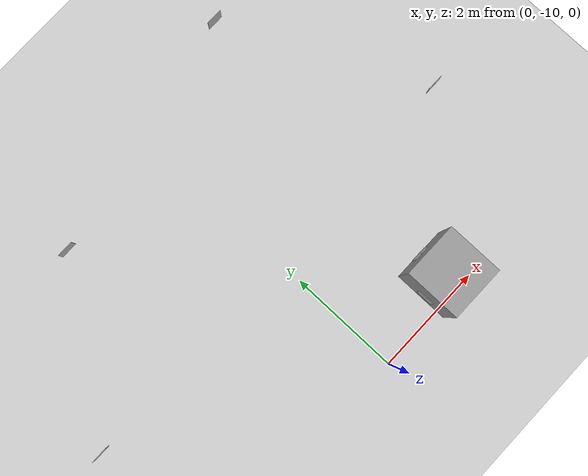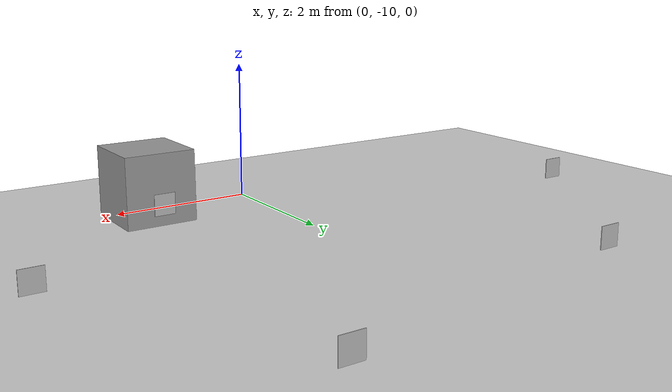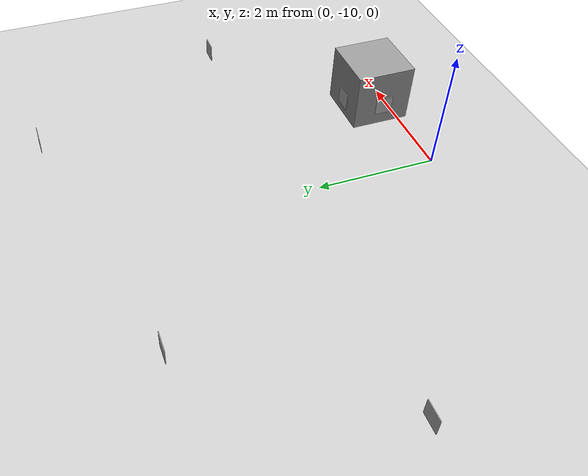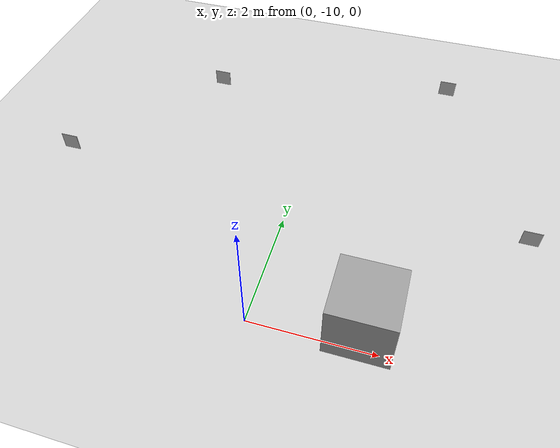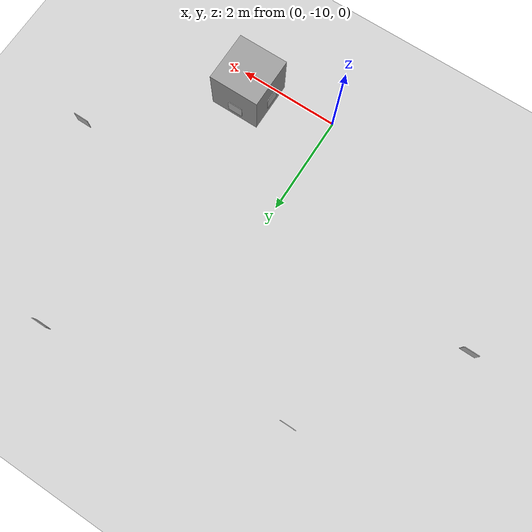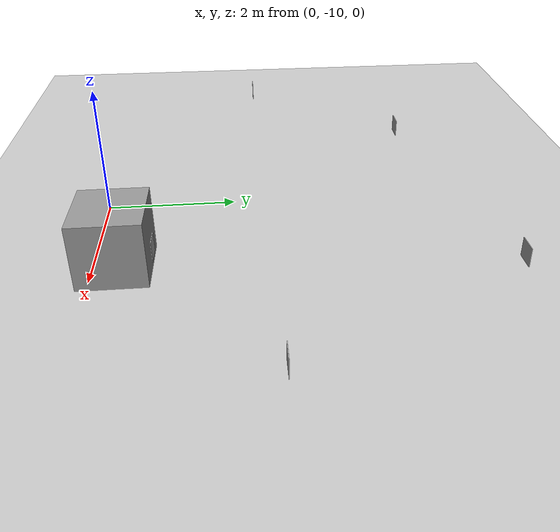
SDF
<sdf version="1.6">
 <world name="default">
  <model name="ground_plane">
   <static>1</static>
   <link name="link">
    <collision name="collision">
     <geometry><plane><normal>0 0 1</normal><size>100 100</size></plane></geometry>
     <surface>
      <contact><collide_bitmask>65535</collide_bitmask></contact>
      <friction><ode><mu>100</mu><mu2>50</mu2></ode></friction>
     </surface>
    </collision>
    <visual name="visual">
     <cast_shadows>0</cast_shadows>
     <geometry><plane><normal>0 0 1</normal><size>100 100</size></plane></geometry>
     <material>
      <script><uri>file://media/materials/scripts/gazebo.material</uri><name>Gazebo/Grey</name></script>
     </material>
    </visual>
   </link>
  </model>
  <model name="Apriltag36_11_00000">
   <link name="main">
    <visual name="main_Visual">
     <geometry><box><size>0.3 0.3 0.01</size></box></geometry>
     <material>
      <script>
       <uri>model://Apriltag36_11_00000/materials/scripts</uri>
       <uri>model://Apriltag36_11_00000/materials/textures</uri>
       <name>Apriltag36_11_00000</name>
      </script>
     </material>
    </visual>
   </link>
   <static>1</static>
   <pose>1.64909 -9.13497 0.299088 -1.5708 -6e-06 3.14159</pose>
  </model>
  <model name="Apriltag36_11_00001">
   <link name="main">
    <visual name="main_Visual">
     <geometry><box><size>0.3 0.3 0.01</size></box></geometry>
     <material>
      <script>
       <uri>model://Apriltag36_11_00001/materials/scripts</uri>
       <uri>model://Apriltag36_11_00001/materials/textures</uri>
       <name>Apriltag36_11_00001</name>
      </script>
     </material>
    </visual>
   </link>
   <static>1</static>
   <pose>1.17175 -9.66767 0.358115 3.14159 -1.57079 3.14159</pose>
  </model>
  <model name="Apriltag36_11_00002">
   <link name="main">
    <visual name="main_Visual">
     <geometry><box><size>0.3 0.3 0.01</size></box></geometry>
     <material>
      <script>
       <uri>model://Apriltag36_11_00002/materials/scripts</uri>
       <uri>model://Apriltag36_11_00002/materials/textures</uri>
       <name>Apriltag36_11_00002</name>
      </script>
     </material>
    </visual>
   </link>
   <static>1</static>
   <pose>-4.18474 -7.55956 0.333686 1.5708 -0 0</pose>
  </model>
  <model name="Apriltag36_11_00003">
   <link name="main">
    <visual name="main_Visual">
     <geometry><box><size>0.3 0.3 0.01</size></box></geometry>
     <material>
      <script>
       <uri>model://Apriltag36_11_00003/materials/scripts</uri>
       <uri>model://Apriltag36_11_00003/materials/textures</uri>
       <name>Apriltag36_11_00003</name>
      </script>
     </material>
    </visual>
   </link>
   <static>1</static>
   <pose>2.23457 -3.95659 0.284987 1.5708 -0 0</pose>
  </model>
  <model name="Apriltag36_11_00005">
   <link name="main">
    <visual name="main_Visual">
     <geometry><box><size>0.3 0.3 0.01</size></box></geometry>
     <material>
      <script>
       <uri>model://Apriltag36_11_00005/materials/scripts</uri>
       <uri>model://Apriltag36_11_00005/materials/textures</uri>
       <name>Apriltag36_11_00005</name>
      </script>
     </material>
    </visual>
   </link>
   <static>1</static>
   <pose>3.95078 -7.40402 0.212406 1.5708 -0 3.14159</pose>
  </model>
  <model name="Apriltag36_11_00007">
   <link name="main">
    <visual name="main_Visual">
     <geometry><box><size>0.3 0.3 0.01</size></box></geometry>
     <material>
      <script>
       <uri>model://Apriltag36_11_00007/materials/scripts</uri>
       <uri>model://Apriltag36_11_00007/materials/textures</uri>
       <name>Apriltag36_11_00007</name>
      </script>
     </material>
    </visual>
   </link>
   <static>1</static>
   <pose>-2.24047 -4.86128 0.255985 -1.5708 0 0</pose>
  </model>
  <model name="unit_box">
   <pose>1.68013 -9.65015 0.499998 -1e-06 4e-06 0</pose>
   <link name="link">
    <inertial>
     <mass>1</mass>
     <inertia>
      <ixx>0.166667</ixx>
      <ixy>0</ixy>
      <ixz>0</ixz>
      <iyy>0.166667</iyy>
      <iyz>0</iyz>
      <izz>0.166667</izz>
     </inertia>
    </inertial>
    <collision name="collision"><geometry><box><size>1 1 1</size></box></geometry></collision>
    <visual name="visual">
     <geometry><box><size>1 1 1</size></box></geometry>
     <material>
      <script><name>Gazebo/Grey</name><uri>file://media/materials/scripts/gazebo.material</uri></script>
     </material>
    </visual>
   </link>
  </model>
 </world>
</sdf>
